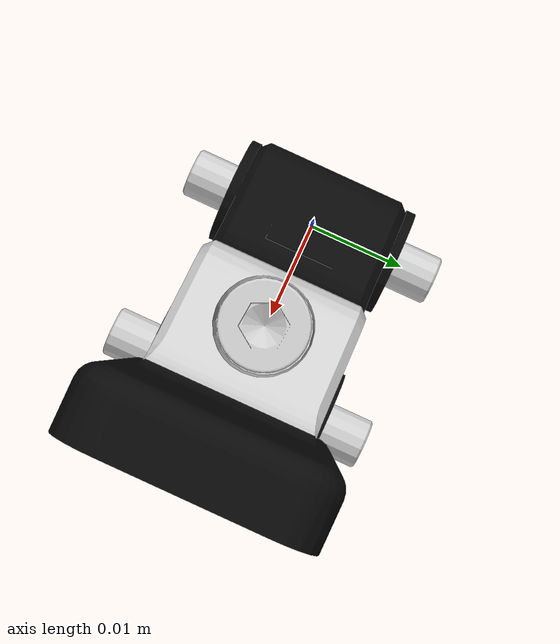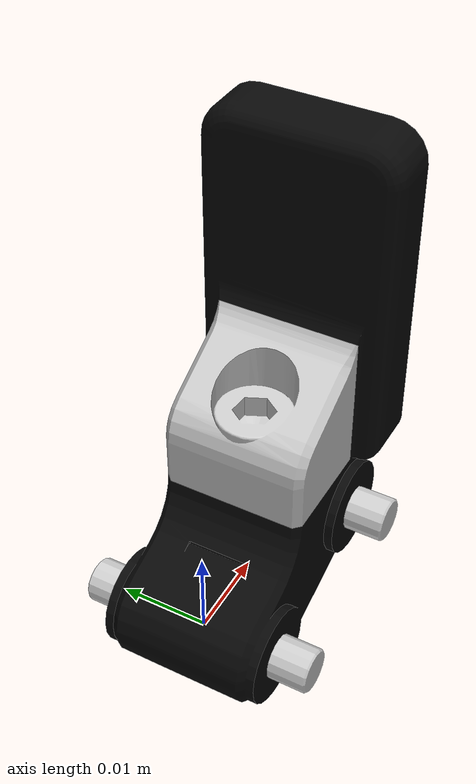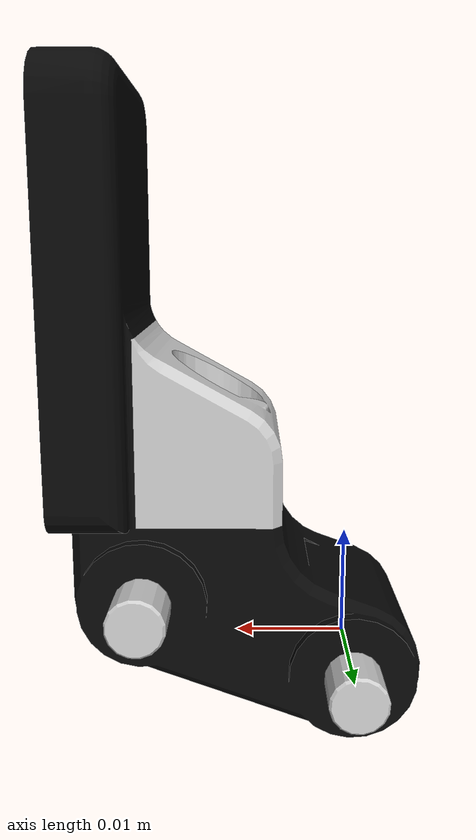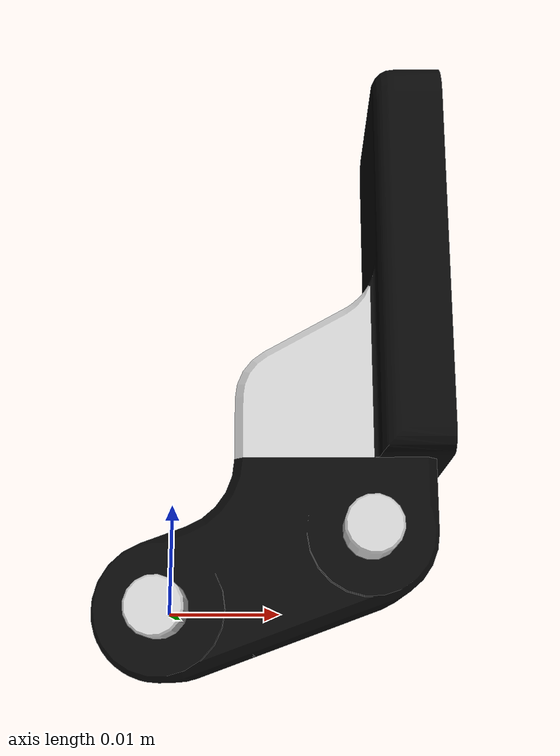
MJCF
<mujoco model="right_finger_tip">
  <default>
    <default class="visual">
      <geom group="2" type="mesh" contype="0" conaffinity="0"/>
    </default>
    <default class="collision">
      <geom group="3" type="mesh"/>
    </default>
  </default>
  <asset>
    <material name="material_right_finger_tip_0" specular="0.20000000000000004" shininess="1.0" rgba="0.03137255 0.03137255 0.03137255 1.0"/>
    <material name="material_right_finger_tip_1" specular="0.20000000000000004" shininess="1.0" rgba="0.80000000 0.80000000 0.80000000 1.0"/>
    <mesh file="right_finger_tip_0.obj"/>
    <mesh file="right_finger_tip_1.obj"/>
  </asset>
  <worldbody>
    <body name="right_finger_tip">
      <geom mesh="right_finger_tip_0" material="material_right_finger_tip_1" class="visual"/>
      <geom mesh="right_finger_tip_1" material="material_right_finger_tip_0" class="visual"/>
      <geom mesh="right_finger_tip_0" class="collision"/>
      <geom mesh="right_finger_tip_1" class="collision"/>
    </body>
  </worldbody>
</mujoco>
